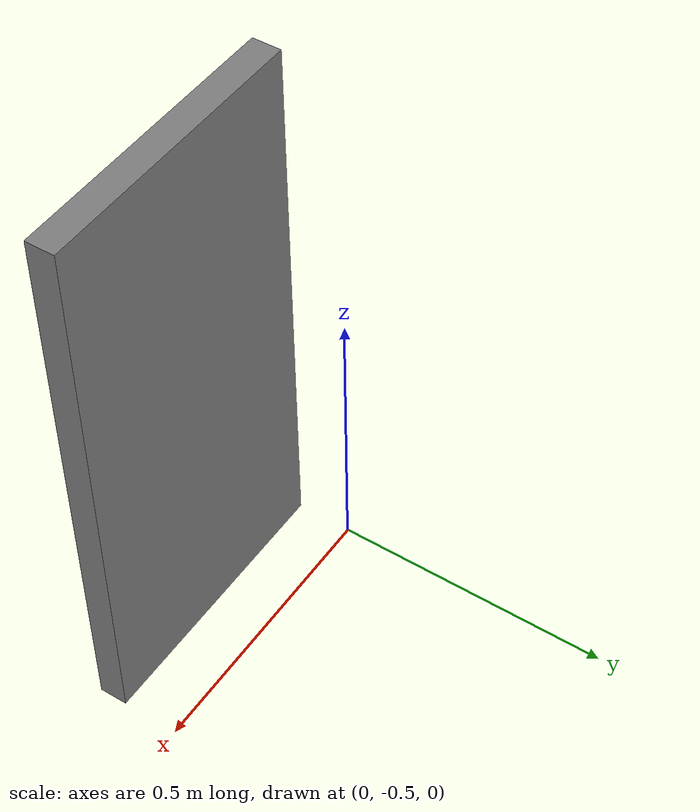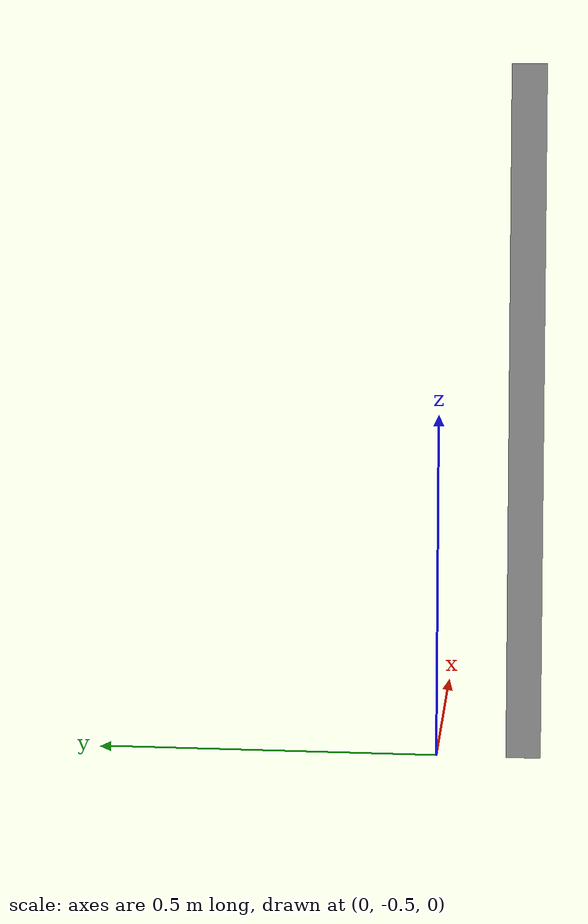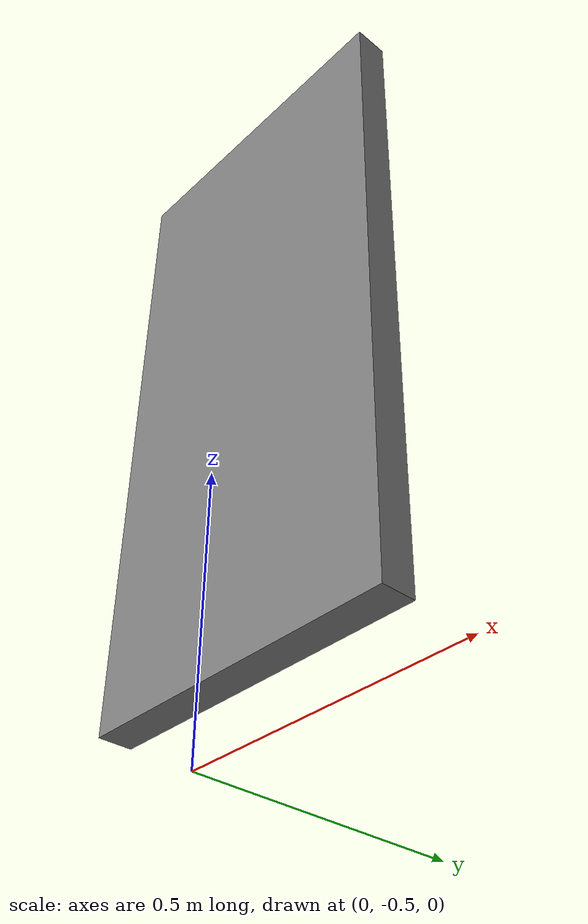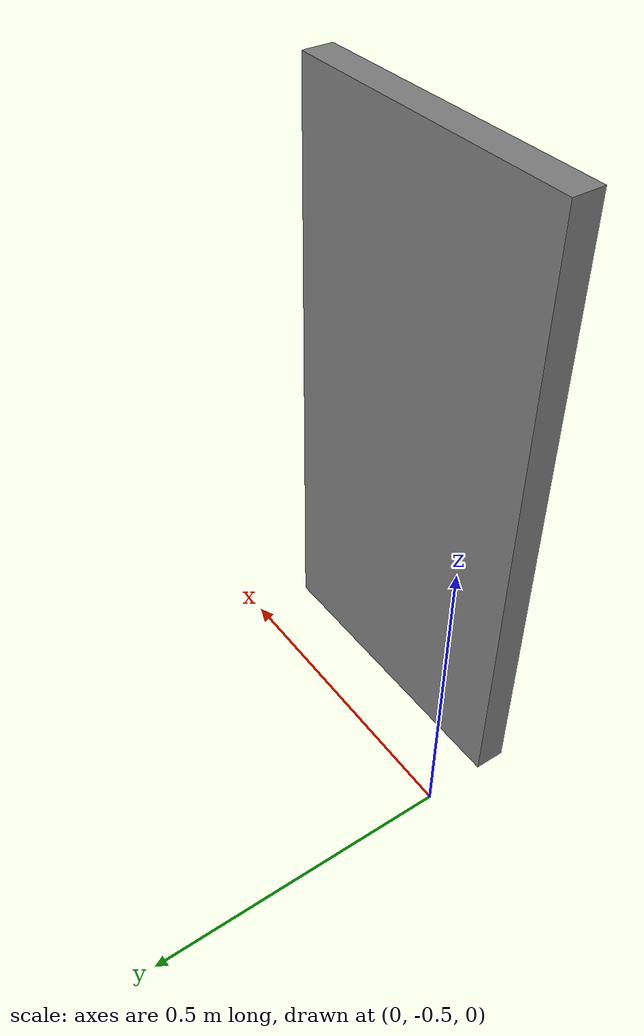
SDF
<?xml version="1.0"?>
<sdf version="1.7">
  <model name="wall">
    <link name="wall_body">
      <visual name="wall_visual">
        <pose> 0.25 -0.625 0.5 0 0 0</pose>
        <geometry>
          <box>
            <size>0.5 0.05 1</size>
          </box>
        </geometry>
        <material>
          <diffuse>0.5 0.5 0.5 1</diffuse>
        </material>
      </visual>
      <collision name="wall">
        <pose> 0.25 0.6 0.5 0 0 0</pose>
        <geometry>
          <box>
            <size>0.5 0.05 1</size>
          </box>
        </geometry>
        <drake:proximity_properties>
          <drake:compliant_hydroelastic/>
          <drake:hydroelastic_modulus>1e7</drake:hydroelastic_modulus>
          <drake:mu_dynamic>0.5</drake:mu_dynamic>
          <drake:hunt_crossley_dissipation>1.25</drake:hunt_crossley_dissipation>
        </drake:proximity_properties>
      </collision>
    </link>
  </model>
</sdf>
